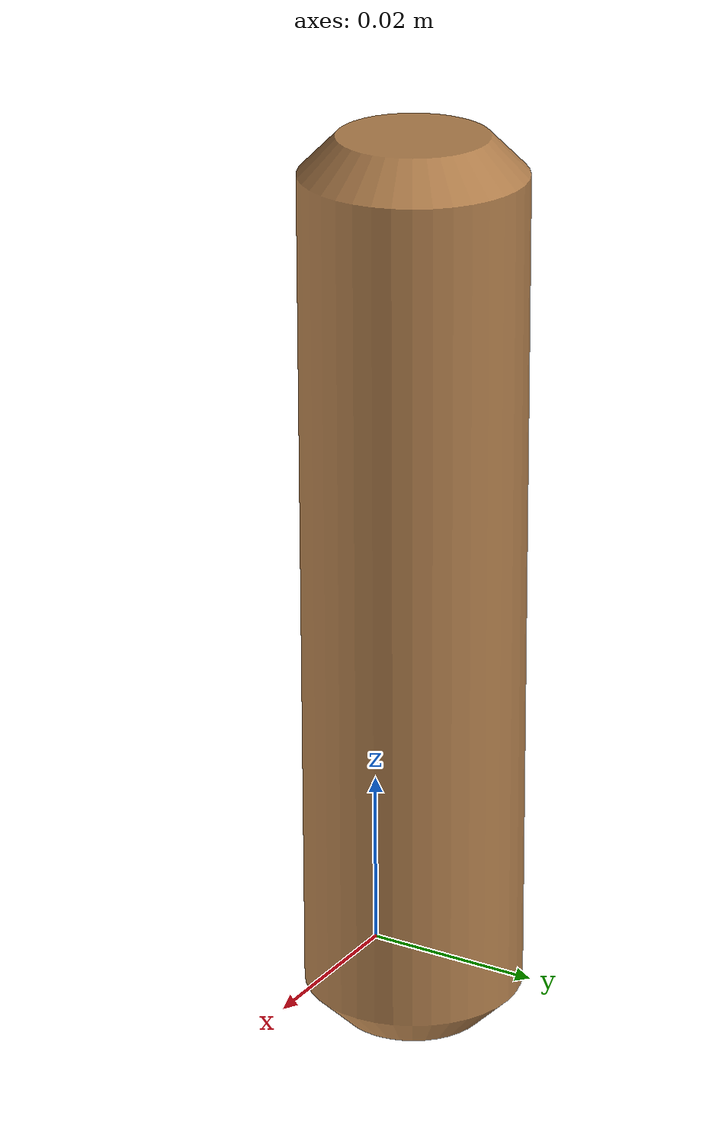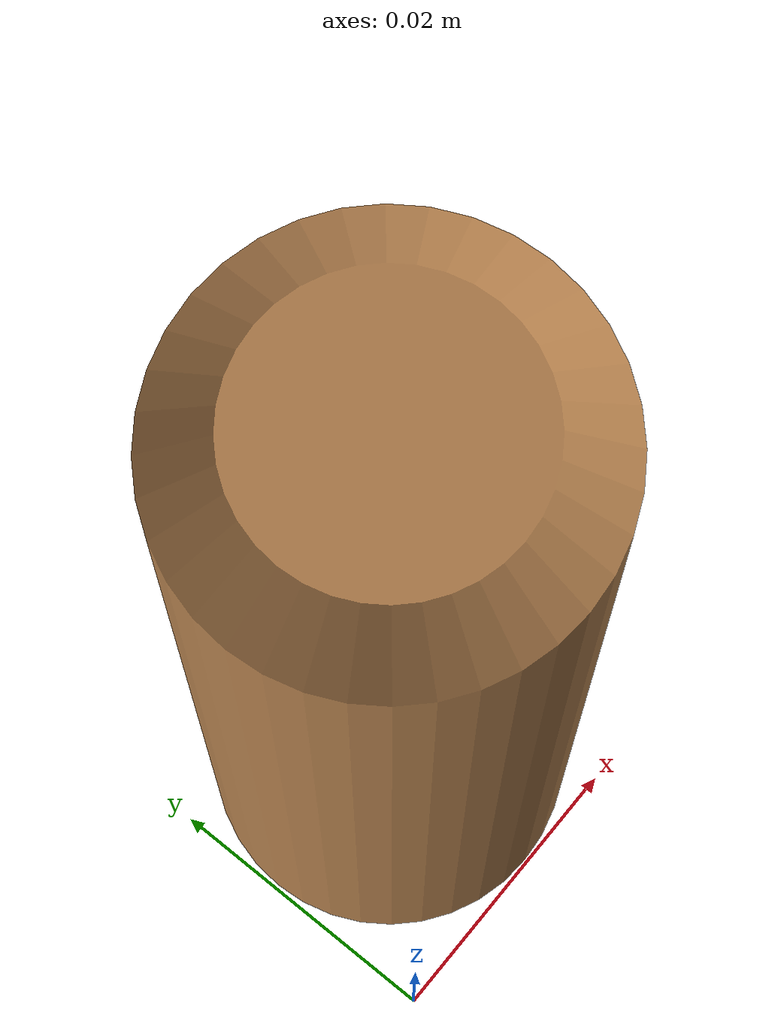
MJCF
<mujoco model="insertion_peg1">
  <asset>
    <!-- Scaled down since it was exported in "millimeters" in solidworks. -->
    <mesh file="meshes/Peg_0-24CircleOutside_0-1Length.STL" name="insertion_peg1" scale="0.001 0.001 0.001"/>
    <texture file="../textures/red-wood.png" type="cube" name="red-wood" />
    <material name="plate_mat" texture="red-wood" texrepeat="3 3" specular="0.4" shininess="0.1"/>
  </asset>
  <worldbody>
    <body>
      <body name="object" euler="0 0 0">
        <geom pos="0 0 0" mesh="insertion_peg1" type="mesh" solimp="0.998 0.998 0.001" solref="0.001 1" density="50" friction="0.95 0.3 0.1" material="plate_mat" contype="0" conaffinity="0" group="1"/>
        <geom pos="0 0 0" mesh="insertion_peg1" type="mesh" solimp="0.998 0.998 0.001" solref="0.001 1" density="50" friction="0.95 0.3 0.1" material="plate_mat" group="0"/>
      </body>
      <!-- TODO: Update with dimensions of Insertion Objects -->
      <site rgba="0 0 0 0" size="0.005" pos="0 0 -0.02" name="bottom_site"/>
      <site rgba="0 0 0 0" size="0.005" pos="0 0 0.02" name="top_site"/>
      <site rgba="0 0 0 0" size="0.005" pos="0.25 0.25 0.1" name="horizontal_radius_site"/>
    </body>
  </worldbody>
</mujoco>
